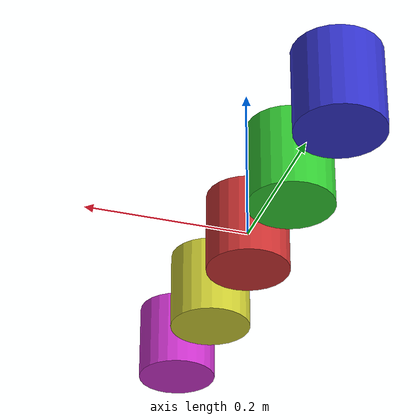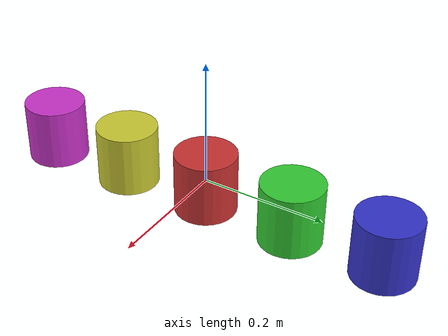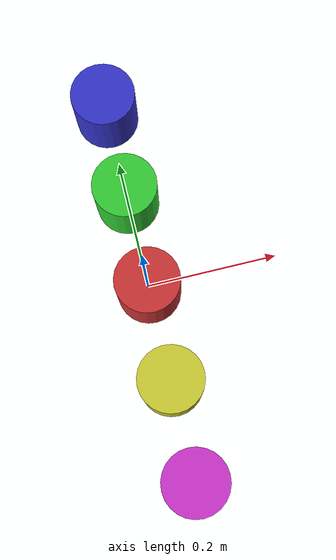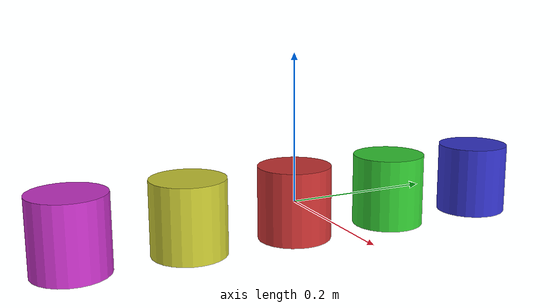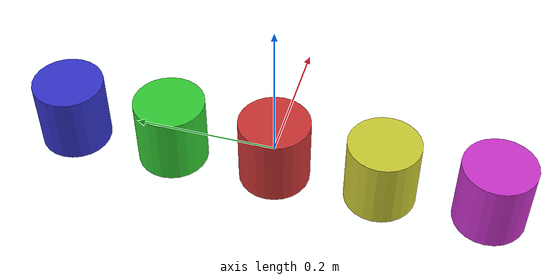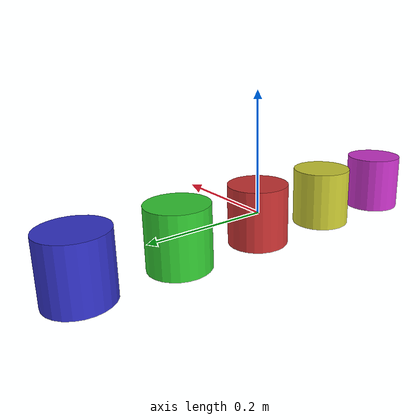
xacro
<?xml version="1.0"?>
<robot xmlns:xacro="http://www.ros.org/wiki/xacro" name="myactuator_arm">
  <xacro:arg name="pkg_share" default=""/>
  <xacro:arg name="num_joints" default="5"/>

  <xacro:property name="num_joints" value="$(arg num_joints)"/>

  <!-- Base link (fixed to world) -->
  <link name="world"/>

  <!-- Joint 1 (EtherCAT slave position 0) -->
  <xacro:if value="${num_joints >= 1}">
    <link name="link1">
      <visual>
        <geometry>
          <cylinder radius="0.05" length="0.1"/>
        </geometry>
        <material name="blue">
          <color rgba="0.2 0.2 0.8 1"/>
        </material>
      </visual>
    </link>

    <joint name="joint1" type="revolute">
      <parent link="world"/>
      <child link="link1"/>
      <origin xyz="0 0.3 0" rpy="0 0 0"/>
      <axis xyz="0 0 1"/>
      <limit lower="-3.14" upper="3.14" velocity="16.0" effort="20.0"/>
    </joint>
  </xacro:if>

  <!-- Joint 2 (EtherCAT slave position 1) -->
  <xacro:if value="${num_joints >= 2}">
    <link name="link2">
      <visual>
        <geometry>
          <cylinder radius="0.05" length="0.1"/>
        </geometry>
        <material name="green">
          <color rgba="0.2 0.8 0.2 1"/>
        </material>
      </visual>
    </link>

    <joint name="joint2" type="revolute">
      <parent link="world"/>
      <child link="link2"/>
      <origin xyz="0 0.15 0" rpy="0 0 0"/>
      <axis xyz="0 0 1"/>
      <limit lower="-3.14" upper="3.14" velocity="16.0" effort="20.0"/>
    </joint>
  </xacro:if>

  <!-- Joint 3 (EtherCAT slave position 2) -->
  <xacro:if value="${num_joints >= 3}">
    <link name="link3">
      <visual>
        <geometry>
          <cylinder radius="0.05" length="0.1"/>
        </geometry>
        <material name="red">
          <color rgba="0.8 0.2 0.2 1"/>
        </material>
      </visual>
    </link>

    <joint name="joint3" type="revolute">
      <parent link="world"/>
      <child link="link3"/>
      <origin xyz="0 0 0" rpy="0 0 0"/>
      <axis xyz="0 0 1"/>
      <limit lower="-3.14" upper="3.14" velocity="16.0" effort="20.0"/>
    </joint>
  </xacro:if>

  <!-- Joint 4 (EtherCAT slave position 3) -->
  <xacro:if value="${num_joints >= 4}">
    <link name="link4">
      <visual>
        <geometry>
          <cylinder radius="0.05" length="0.1"/>
        </geometry>
        <material name="yellow">
          <color rgba="0.8 0.8 0.2 1"/>
        </material>
      </visual>
    </link>

    <joint name="joint4" type="revolute">
      <parent link="world"/>
      <child link="link4"/>
      <origin xyz="0 -0.15 0" rpy="0 0 0"/>
      <axis xyz="0 0 1"/>
      <limit lower="-3.14" upper="3.14" velocity="16.0" effort="20.0"/>
    </joint>
  </xacro:if>

  <!-- Joint 5 (EtherCAT slave position 4) -->
  <xacro:if value="${num_joints >= 5}">
    <link name="link5">
      <visual>
        <geometry>
          <cylinder radius="0.05" length="0.1"/>
        </geometry>
        <material name="purple">
          <color rgba="0.8 0.2 0.8 1"/>
        </material>
      </visual>
    </link>

    <joint name="joint5" type="revolute">
      <parent link="world"/>
      <child link="link5"/>
      <origin xyz="0 -0.3 0" rpy="0 0 0"/>
      <axis xyz="0 0 1"/>
      <limit lower="-3.14" upper="3.14" velocity="16.0" effort="20.0"/>
    </joint>
  </xacro:if>

  <!-- ros2_control configuration - CST (Torque) mode -->
  <ros2_control name="EthercatSystem" type="system">
    <hardware>
      <plugin>ethercat_driver/EthercatDriver</plugin>
      <param name="master_id">0</param>
      <param name="control_frequency">250</param>
    </hardware>

    <!-- Joint 1 - EtherCAT slave position 0 -->
    <xacro:if value="${num_joints >= 1}">
      <joint name="joint1">
        <command_interface name="velocity"/>
        <command_interface name="position"/>
        <command_interface name="effort"/>
        <state_interface name="position"/>
        <state_interface name="velocity"/>
        <state_interface name="effort"/>
        <ec_module name="MyActuatorX6_Joint1">
          <plugin>ethercat_generic_plugins/EcCiA402Drive</plugin>
          <param name="alias">0</param>
          <param name="position">0</param>
          <param name="slave_config">$(arg pkg_share)/config/ethercat/joint1_motor.yaml</param>
          <param name="mode_of_operation">10</param>
        </ec_module>
      </joint>
    </xacro:if>

    <!-- Joint 2 - EtherCAT slave position 1 -->
    <xacro:if value="${num_joints >= 2}">
      <joint name="joint2">
        <command_interface name="velocity"/>
        <command_interface name="position"/>
        <command_interface name="effort"/>
        <state_interface name="position"/>
        <state_interface name="velocity"/>
        <state_interface name="effort"/>
        <ec_module name="MyActuatorX6_Joint2">
          <plugin>ethercat_generic_plugins/EcCiA402Drive</plugin>
          <param name="alias">0</param>
          <param name="position">1</param>
          <param name="slave_config">$(arg pkg_share)/config/ethercat/joint2_motor.yaml</param>
          <param name="mode_of_operation">10</param>
        </ec_module>
      </joint>
    </xacro:if>

    <!-- Joint 3 - EtherCAT slave position 2 -->
    <xacro:if value="${num_joints >= 3}">
      <joint name="joint3">
        <command_interface name="velocity"/>
        <command_interface name="position"/>
        <command_interface name="effort"/>
        <state_interface name="position"/>
        <state_interface name="velocity"/>
        <state_interface name="effort"/>
        <ec_module name="MyActuatorX6_Joint3">
          <plugin>ethercat_generic_plugins/EcCiA402Drive</plugin>
          <param name="alias">0</param>
          <param name="position">2</param>
          <param name="slave_config">$(arg pkg_share)/config/ethercat/joint3_motor.yaml</param>
          <param name="mode_of_operation">10</param>
        </ec_module>
      </joint>
    </xacro:if>

    <!-- Joint 4 - EtherCAT slave position 3 -->
    <xacro:if value="${num_joints >= 4}">
      <joint name="joint4">
        <command_interface name="velocity"/>
        <command_interface name="position"/>
        <command_interface name="effort"/>
        <state_interface name="position"/>
        <state_interface name="velocity"/>
        <state_interface name="effort"/>
        <ec_module name="MyActuatorX6_Joint4">
          <plugin>ethercat_generic_plugins/EcCiA402Drive</plugin>
          <param name="alias">0</param>
          <param name="position">3</param>
          <param name="slave_config">$(arg pkg_share)/config/ethercat/joint4_motor.yaml</param>
          <param name="mode_of_operation">10</param>
        </ec_module>
      </joint>
    </xacro:if>

    <!-- Joint 5 - EtherCAT slave position 4 -->
    <xacro:if value="${num_joints >= 5}">
      <joint name="joint5">
        <command_interface name="velocity"/>
        <command_interface name="position"/>
        <command_interface name="effort"/>
        <state_interface name="position"/>
        <state_interface name="velocity"/>
        <state_interface name="effort"/>
        <ec_module name="MyActuatorX6_Joint5">
          <plugin>ethercat_generic_plugins/EcCiA402Drive</plugin>
          <param name="alias">0</param>
          <param name="position">4</param>
          <param name="slave_config">$(arg pkg_share)/config/ethercat/joint5_motor.yaml</param>
          <param name="mode_of_operation">10</param>
        </ec_module>
      </joint>
    </xacro:if>
  </ros2_control>

</robot>
